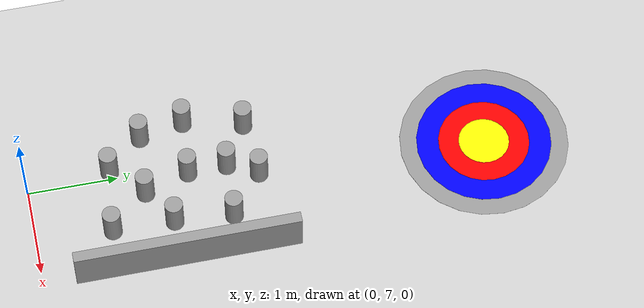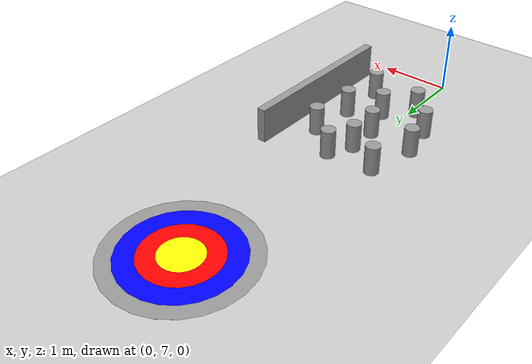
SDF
<sdf version="1.7">
 <world name="default">
  <model name="ground_plane">
   <static>1</static>
   <link name="link">
    <collision name="collision">
     <geometry><plane><normal>0 0 1</normal><size>100 100</size></plane></geometry>
     <surface><friction><ode><mu>100</mu><mu2>50</mu2></ode></friction></surface>
    </collision>
    <visual name="visual">
     <cast_shadows>0</cast_shadows>
     <geometry><plane><normal>0 0 1</normal><size>100 100</size></plane></geometry>
     <material>
      <script><uri>file://media/materials/scripts/gazebo.material</uri><name>Gazebo/Grey</name></script>
     </material>
    </visual>
   </link>
  </model>
  <model name="Target">
   <link name="link_4">
    <inertial>
     <mass>1</mass>
     <inertia><ixx>0.145833</ixx><ixy>0</ixy><ixz>0</ixz><iyy>0.145833</iyy><iyz>0</iyz><izz>0.125</izz></inertia>
    </inertial>
    <pose>0 0 -0.00075 0 -0 0</pose>
    <gravity>0</gravity>
    <kinematic>1</kinematic>
    <visual name="visual">
     <geometry><cylinder><radius>0.94158</radius><length>0.001</length></cylinder></geometry>
     <material>
      <lighting>1</lighting>
      <script><uri>file://media/materials/scripts/gazebo.material</uri><name>Gazebo/Grey</name></script>
      <shader type="pixel"><normal_map>__default__</normal_map></shader>
      <ambient>0 0 0 1</ambient>
      <diffuse>0 0 0 1</diffuse>
      <specular>0.01 0.01 0.01 1</specular>
      <emissive>0 0 0 1</emissive>
     </material>
    </visual>
   </link>
   <link name="link_4_clone">
    <inertial>
     <mass>1</mass>
     <inertia><ixx>0.145833</ixx><ixy>0</ixy><ixz>0</ixz><iyy>0.145833</iyy><iyz>0</iyz><izz>0.125</izz></inertia>
    </inertial>
    <pose>0 0 -0.00025 0 -0 0</pose>
    <gravity>0</gravity>
    <kinematic>1</kinematic>
    <visual name="visual">
     <geometry><cylinder><radius>0.753264</radius><length>0.001</length></cylinder></geometry>
     <material>
      <lighting>1</lighting>
      <script><uri>file://media/materials/scripts/gazebo.material</uri><name>Gazebo/Grey</name></script>
      <shader type="pixel"><normal_map>__default__</normal_map></shader>
      <ambient>0 0 1 1</ambient>
      <diffuse>0 0 1 1</diffuse>
      <specular>0.01 0.01 0.01 1</specular>
      <emissive>0 0 0 1</emissive>
     </material>
    </visual>
   </link>
   <link name="link_4_clone_clone">
    <inertial>
     <mass>1</mass>
     <inertia><ixx>0.145833</ixx><ixy>0</ixy><ixz>0</ixz><iyy>0.145833</iyy><iyz>0</iyz><izz>0.125</izz></inertia>
    </inertial>
    <pose>0 0 0.00025 0 -0 0</pose>
    <kinematic>1</kinematic>
    <visual name="visual">
     <geometry><cylinder><radius>0.508453</radius><length>0.001</length></cylinder></geometry>
     <material>
      <lighting>1</lighting>
      <script><uri>file://media/materials/scripts/gazebo.material</uri><name>Gazebo/Grey</name></script>
      <shader type="pixel"><normal_map>__default__</normal_map></shader>
      <ambient>1 0 0 1</ambient>
      <diffuse>1 0 0 1</diffuse>
      <specular>0.01 0.01 0.01 1</specular>
      <emissive>0 0 0 1</emissive>
     </material>
    </visual>
   </link>
   <link name="link_4_clone_clone_clone">
    <inertial>
     <mass>1</mass>
     <inertia><ixx>0.145833</ixx><ixy>0</ixy><ixz>0</ixz><iyy>0.145833</iyy><iyz>0</iyz><izz>0.125</izz></inertia>
    </inertial>
    <pose>0 0 0.00075 0 -0 0</pose>
    <gravity>0</gravity>
    <kinematic>1</kinematic>
    <visual name="visual">
     <geometry><cylinder><radius>0.282474</radius><length>0.001</length></cylinder></geometry>
     <material>
      <lighting>1</lighting>
      <script><uri>file://media/materials/scripts/gazebo.material</uri><name>Gazebo/Grey</name></script>
      <shader type="pixel"><normal_map>__default__</normal_map></shader>
      <ambient>1 1 0 1</ambient>
      <diffuse>1 1 0 1</diffuse>
      <specular>0.01 0.01 0.01 1</specular>
      <emissive>0 0 0 1</emissive>
     </material>
    </visual>
   </link>
   <static>0</static>
   <pose>0.34577 12.078 0.00125 0 -0 0</pose>
  </model>
  <model name="murs_clone">
   <link name="link">
    <inertial>
     <mass>0.146674</mass>
     <inertia>
      <ixx>0.0781773</ixx>
      <ixy>0</ixy>
      <ixz>0</ixz>
      <iyy>0.00309761</iyy>
      <iyz>0</iyz>
      <izz>0.0754374</izz>
     </inertia>
    </inertial>
    <kinematic>1</kinematic>
    <pose>-0.225456 0.79863 -0.251939 0 -0 0</pose>
    <gravity>0</gravity>
    <visual name="visual">
     <geometry><box><size>0.120964 2.48137 0.488666</size></box></geometry>
     <material>
      <script><name>Gazebo/Grey</name><uri>file://media/materials/scripts/gazebo.material</uri></script>
      <shader type="pixel"><normal_map>__default__</normal_map></shader>
      <ambient>0.5 0.5 0.5 0</ambient>
      <diffuse>0.5 0.5 0.5 1</diffuse>
      <specular>0.01 0.01 0.01 1</specular>
      <emissive>0 0 0 1</emissive>
     </material>
    </visual>
    <collision name="collision">
     <geometry><box><size>0.120964 2.48137 0.488666</size></box></geometry>
     <surface>
      <friction>
       <ode><mu>1</mu><mu2>1</mu2><fdir1>0 0 0</fdir1><slip1>0</slip1><slip2>0</slip2></ode>
       <torsional>
        <coefficient>1</coefficient>
        <patch_radius>0</patch_radius>
        <surface_radius>0</surface_radius>
        <use_patch_radius>1</use_patch_radius>
        <ode><slip>0</slip></ode>
       </torsional>
      </friction>
      <bounce><restitution_coefficient>0</restitution_coefficient><threshold>1e+06</threshold></bounce>
      <contact>
       <collide_without_contact>0</collide_without_contact>
       <collide_without_contact_bitmask>1</collide_without_contact_bitmask>
       <collide_bitmask>1</collide_bitmask>
       <ode>
        <soft_cfm>0</soft_cfm>
        <soft_erp>0.2</soft_erp>
        <kp>1e+13</kp>
        <kd>1</kd>
        <max_vel>0.01</max_vel>
        <min_depth>0</min_depth>
       </ode>
       <bullet>
        <split_impulse>1</split_impulse>
        <split_impulse_penetration_threshold>-0.01</split_impulse_penetration_threshold>
        <soft_cfm>0</soft_cfm>
        <soft_erp>0.2</soft_erp>
        <kp>1e+13</kp>
        <kd>1</kd>
       </bullet>
      </contact>
     </surface>
    </collision>
   </link>
   <static>0</static>
   <pose>1.3782 7.80287 0.499949 -1e-05 0 0</pose>
  </model>
  <model name="obstacle">
   <link name="link">
    <inertial>
     <mass>242.531</mass>
     <inertia><ixx>3.84007</ixx><ixy>0</ixy><ixz>0</ixz><iyy>3.84007</iyy><iyz>0</iyz><izz>1.21265</izz></inertia>
    </inertial>
    <kinematic>1</kinematic>
    <pose>0 0 -0.2 0 -0 0</pose>
    <gravity>0</gravity>
    <visual name="visual">
     <geometry><cylinder><radius>0.1</radius><length>0.4</length></cylinder></geometry>
     <material>
      <script><name>Gazebo/Grey</name><uri>file://media/materials/scripts/gazebo.material</uri></script>
      <shader type="pixel"><normal_map>__default__</normal_map></shader>
      <ambient>0.3 0.3 0.3 1</ambient>
      <diffuse>0.7 0.7 0.7 1</diffuse>
      <specular>0.01 0.01 0.01 1</specular>
      <emissive>0 0 0 1</emissive>
     </material>
    </visual>
    <collision name="collision">
     <geometry><cylinder><radius>0.1</radius><length>0.4</length></cylinder></geometry>
     <surface>
      <friction>
       <ode><mu>1</mu><mu2>1</mu2><fdir1>0 0 0</fdir1><slip1>0</slip1><slip2>0</slip2></ode>
       <torsional>
        <coefficient>1</coefficient>
        <patch_radius>0</patch_radius>
        <surface_radius>0</surface_radius>
        <use_patch_radius>1</use_patch_radius>
        <ode><slip>0</slip></ode>
       </torsional>
      </friction>
      <bounce><restitution_coefficient>0</restitution_coefficient><threshold>1e+06</threshold></bounce>
      <contact>
       <collide_without_contact>0</collide_without_contact>
       <collide_without_contact_bitmask>1</collide_without_contact_bitmask>
       <collide_bitmask>1</collide_bitmask>
       <ode>
        <soft_cfm>0</soft_cfm>
        <soft_erp>0.2</soft_erp>
        <kp>1e+13</kp>
        <kd>1</kd>
        <max_vel>0.01</max_vel>
        <min_depth>0</min_depth>
       </ode>
       <bullet>
        <split_impulse>1</split_impulse>
        <split_impulse_penetration_threshold>-0.01</split_impulse_penetration_threshold>
        <soft_cfm>0</soft_cfm>
        <soft_erp>0.2</soft_erp>
        <kp>1e+13</kp>
        <kd>1</kd>
       </bullet>
      </contact>
     </surface>
    </collision>
   </link>
   <static>0</static>
   <pose>0.662015 7.84654 0.401053 0 -0 0</pose>
  </model>
  <model name="obstacle_clone">
   <link name="link">
    <inertial>
     <mass>242.531</mass>
     <inertia><ixx>3.84007</ixx><ixy>0</ixy><ixz>0</ixz><iyy>3.84007</iyy><iyz>0</iyz><izz>1.21265</izz></inertia>
    </inertial>
    <kinematic>1</kinematic>
    <pose>0 0 -0.2 0 -0 0</pose>
    <gravity>0</gravity>
    <visual name="visual">
     <geometry><cylinder><radius>0.1</radius><length>0.4</length></cylinder></geometry>
     <material>
      <script><name>Gazebo/Grey</name><uri>file://media/materials/scripts/gazebo.material</uri></script>
      <shader type="pixel"><normal_map>__default__</normal_map></shader>
      <ambient>0.3 0.3 0.3 1</ambient>
      <diffuse>0.7 0.7 0.7 1</diffuse>
      <specular>0.01 0.01 0.01 1</specular>
      <emissive>0 0 0 1</emissive>
     </material>
    </visual>
    <collision name="collision">
     <geometry><cylinder><radius>0.1</radius><length>0.4</length></cylinder></geometry>
     <surface>
      <friction>
       <ode><mu>1</mu><mu2>1</mu2><fdir1>0 0 0</fdir1><slip1>0</slip1><slip2>0</slip2></ode>
       <torsional>
        <coefficient>1</coefficient>
        <patch_radius>0</patch_radius>
        <surface_radius>0</surface_radius>
        <use_patch_radius>1</use_patch_radius>
        <ode><slip>0</slip></ode>
       </torsional>
      </friction>
      <bounce><restitution_coefficient>0</restitution_coefficient><threshold>1e+06</threshold></bounce>
      <contact>
       <collide_without_contact>0</collide_without_contact>
       <collide_without_contact_bitmask>1</collide_without_contact_bitmask>
       <collide_bitmask>1</collide_bitmask>
       <ode>
        <soft_cfm>0</soft_cfm>
        <soft_erp>0.2</soft_erp>
        <kp>1e+13</kp>
        <kd>1</kd>
        <max_vel>0.01</max_vel>
        <min_depth>0</min_depth>
       </ode>
       <bullet>
        <split_impulse>1</split_impulse>
        <split_impulse_penetration_threshold>-0.01</split_impulse_penetration_threshold>
        <soft_cfm>0</soft_cfm>
        <soft_erp>0.2</soft_erp>
        <kp>1e+13</kp>
        <kd>1</kd>
       </bullet>
      </contact>
     </surface>
    </collision>
   </link>
   <static>0</static>
   <pose>0.10476 9.21027 0.401053 0 -0 0</pose>
  </model>
  <model name="obstacle_clone_0">
   <link name="link">
    <inertial>
     <mass>242.531</mass>
     <inertia><ixx>3.84007</ixx><ixy>0</ixy><ixz>0</ixz><iyy>3.84007</iyy><iyz>0</iyz><izz>1.21265</izz></inertia>
    </inertial>
    <kinematic>1</kinematic>
    <pose>0 0 -0.2 0 -0 0</pose>
    <gravity>0</gravity>
    <visual name="visual">
     <geometry><cylinder><radius>0.1</radius><length>0.4</length></cylinder></geometry>
     <material>
      <script><name>Gazebo/Grey</name><uri>file://media/materials/scripts/gazebo.material</uri></script>
      <shader type="pixel"><normal_map>__default__</normal_map></shader>
      <ambient>0.3 0.3 0.3 1</ambient>
      <diffuse>0.7 0.7 0.7 1</diffuse>
      <specular>0.01 0.01 0.01 1</specular>
      <emissive>0 0 0 1</emissive>
     </material>
    </visual>
    <collision name="collision">
     <geometry><cylinder><radius>0.1</radius><length>0.4</length></cylinder></geometry>
     <surface>
      <friction>
       <ode><mu>1</mu><mu2>1</mu2><fdir1>0 0 0</fdir1><slip1>0</slip1><slip2>0</slip2></ode>
       <torsional>
        <coefficient>1</coefficient>
        <patch_radius>0</patch_radius>
        <surface_radius>0</surface_radius>
        <use_patch_radius>1</use_patch_radius>
        <ode><slip>0</slip></ode>
       </torsional>
      </friction>
      <bounce><restitution_coefficient>0</restitution_coefficient><threshold>1e+06</threshold></bounce>
      <contact>
       <collide_without_contact>0</collide_without_contact>
       <collide_without_contact_bitmask>1</collide_without_contact_bitmask>
       <collide_bitmask>1</collide_bitmask>
       <ode>
        <soft_cfm>0</soft_cfm>
        <soft_erp>0.2</soft_erp>
        <kp>1e+13</kp>
        <kd>1</kd>
        <max_vel>0.01</max_vel>
        <min_depth>0</min_depth>
       </ode>
       <bullet>
        <split_impulse>1</split_impulse>
        <split_impulse_penetration_threshold>-0.01</split_impulse_penetration_threshold>
        <soft_cfm>0</soft_cfm>
        <soft_erp>0.2</soft_erp>
        <kp>1e+13</kp>
        <kd>1</kd>
       </bullet>
      </contact>
     </surface>
    </collision>
   </link>
   <static>0</static>
   <pose>0.731735 9.1769 0.401053 0 -0 0</pose>
  </model>
  <model name="obstacle_clone_1">
   <link name="link">
    <inertial>
     <mass>242.531</mass>
     <inertia><ixx>3.84007</ixx><ixy>0</ixy><ixz>0</ixz><iyy>3.84007</iyy><iyz>0</iyz><izz>1.21265</izz></inertia>
    </inertial>
    <kinematic>1</kinematic>
    <pose>0 0 -0.2 0 -0 0</pose>
    <gravity>0</gravity>
    <visual name="visual">
     <geometry><cylinder><radius>0.1</radius><length>0.4</length></cylinder></geometry>
     <material>
      <script><name>Gazebo/Grey</name><uri>file://media/materials/scripts/gazebo.material</uri></script>
      <shader type="pixel"><normal_map>__default__</normal_map></shader>
      <ambient>0.3 0.3 0.3 1</ambient>
      <diffuse>0.7 0.7 0.7 1</diffuse>
      <specular>0.01 0.01 0.01 1</specular>
      <emissive>0 0 0 1</emissive>
     </material>
    </visual>
    <collision name="collision">
     <geometry><cylinder><radius>0.1</radius><length>0.4</length></cylinder></geometry>
     <surface>
      <friction>
       <ode><mu>1</mu><mu2>1</mu2><fdir1>0 0 0</fdir1><slip1>0</slip1><slip2>0</slip2></ode>
       <torsional>
        <coefficient>1</coefficient>
        <patch_radius>0</patch_radius>
        <surface_radius>0</surface_radius>
        <use_patch_radius>1</use_patch_radius>
        <ode><slip>0</slip></ode>
       </torsional>
      </friction>
      <bounce><restitution_coefficient>0</restitution_coefficient><threshold>1e+06</threshold></bounce>
      <contact>
       <collide_without_contact>0</collide_without_contact>
       <collide_without_contact_bitmask>1</collide_without_contact_bitmask>
       <collide_bitmask>1</collide_bitmask>
       <ode>
        <soft_cfm>0</soft_cfm>
        <soft_erp>0.2</soft_erp>
        <kp>1e+13</kp>
        <kd>1</kd>
        <max_vel>0.01</max_vel>
        <min_depth>0</min_depth>
       </ode>
       <bullet>
        <split_impulse>1</split_impulse>
        <split_impulse_penetration_threshold>-0.01</split_impulse_penetration_threshold>
        <soft_cfm>0</soft_cfm>
        <soft_erp>0.2</soft_erp>
        <kp>1e+13</kp>
        <kd>1</kd>
       </bullet>
      </contact>
     </surface>
    </collision>
   </link>
   <static>0</static>
   <pose>-0.078918 7.92718 0.401053 0 -0 0</pose>
  </model>
  <model name="obstacle_clone_3">
   <link name="link">
    <inertial>
     <mass>242.531</mass>
     <inertia><ixx>3.84007</ixx><ixy>0</ixy><ixz>0</ixz><iyy>3.84007</iyy><iyz>0</iyz><izz>1.21265</izz></inertia>
    </inertial>
    <kinematic>1</kinematic>
    <pose>0 0 -0.2 0 -0 0</pose>
    <gravity>0</gravity>
    <visual name="visual">
     <geometry><cylinder><radius>0.1</radius><length>0.4</length></cylinder></geometry>
     <material>
      <script><name>Gazebo/Grey</name><uri>file://media/materials/scripts/gazebo.material</uri></script>
      <shader type="pixel"><normal_map>__default__</normal_map></shader>
      <ambient>0.3 0.3 0.3 1</ambient>
      <diffuse>0.7 0.7 0.7 1</diffuse>
      <specular>0.01 0.01 0.01 1</specular>
      <emissive>0 0 0 1</emissive>
     </material>
    </visual>
    <collision name="collision">
     <geometry><cylinder><radius>0.1</radius><length>0.4</length></cylinder></geometry>
     <surface>
      <friction>
       <ode><mu>1</mu><mu2>1</mu2><fdir1>0 0 0</fdir1><slip1>0</slip1><slip2>0</slip2></ode>
       <torsional>
        <coefficient>1</coefficient>
        <patch_radius>0</patch_radius>
        <surface_radius>0</surface_radius>
        <use_patch_radius>1</use_patch_radius>
        <ode><slip>0</slip></ode>
       </torsional>
      </friction>
      <bounce><restitution_coefficient>0</restitution_coefficient><threshold>1e+06</threshold></bounce>
      <contact>
       <collide_without_contact>0</collide_without_contact>
       <collide_without_contact_bitmask>1</collide_without_contact_bitmask>
       <collide_bitmask>1</collide_bitmask>
       <ode>
        <soft_cfm>0</soft_cfm>
        <soft_erp>0.2</soft_erp>
        <kp>1e+13</kp>
        <kd>1</kd>
        <max_vel>0.01</max_vel>
        <min_depth>0</min_depth>
       </ode>
       <bullet>
        <split_impulse>1</split_impulse>
        <split_impulse_penetration_threshold>-0.01</split_impulse_penetration_threshold>
        <soft_cfm>0</soft_cfm>
        <soft_erp>0.2</soft_erp>
        <kp>1e+13</kp>
        <kd>1</kd>
       </bullet>
      </contact>
     </surface>
    </collision>
   </link>
   <static>0</static>
   <pose>0.680278 8.5271 0.401053 0 -0 0</pose>
  </model>
  <model name="obstacle_clone_4">
   <link name="link">
    <inertial>
     <mass>242.531</mass>
     <inertia><ixx>3.84007</ixx><ixy>0</ixy><ixz>0</ixz><iyy>3.84007</iyy><iyz>0</iyz><izz>1.21265</izz></inertia>
    </inertial>
    <kinematic>1</kinematic>
    <pose>0 0 -0.2 0 -0 0</pose>
    <gravity>0</gravity>
    <visual name="visual">
     <geometry><cylinder><radius>0.1</radius><length>0.4</length></cylinder></geometry>
     <material>
      <script><name>Gazebo/Grey</name><uri>file://media/materials/scripts/gazebo.material</uri></script>
      <shader type="pixel"><normal_map>__default__</normal_map></shader>
      <ambient>0.3 0.3 0.3 1</ambient>
      <diffuse>0.7 0.7 0.7 1</diffuse>
      <specular>0.01 0.01 0.01 1</specular>
      <emissive>0 0 0 1</emissive>
     </material>
    </visual>
    <collision name="collision">
     <geometry><cylinder><radius>0.1</radius><length>0.4</length></cylinder></geometry>
     <surface>
      <friction>
       <ode><mu>1</mu><mu2>1</mu2><fdir1>0 0 0</fdir1><slip1>0</slip1><slip2>0</slip2></ode>
       <torsional>
        <coefficient>1</coefficient>
        <patch_radius>0</patch_radius>
        <surface_radius>0</surface_radius>
        <use_patch_radius>1</use_patch_radius>
        <ode><slip>0</slip></ode>
       </torsional>
      </friction>
      <bounce><restitution_coefficient>0</restitution_coefficient><threshold>1e+06</threshold></bounce>
      <contact>
       <collide_without_contact>0</collide_without_contact>
       <collide_without_contact_bitmask>1</collide_without_contact_bitmask>
       <collide_bitmask>1</collide_bitmask>
       <ode>
        <soft_cfm>0</soft_cfm>
        <soft_erp>0.2</soft_erp>
        <kp>1e+13</kp>
        <kd>1</kd>
        <max_vel>0.01</max_vel>
        <min_depth>0</min_depth>
       </ode>
       <bullet>
        <split_impulse>1</split_impulse>
        <split_impulse_penetration_threshold>-0.01</split_impulse_penetration_threshold>
        <soft_cfm>0</soft_cfm>
        <soft_erp>0.2</soft_erp>
        <kp>1e+13</kp>
        <kd>1</kd>
       </bullet>
      </contact>
     </surface>
    </collision>
   </link>
   <static>0</static>
   <pose>-0.431692 8.32583 0.401053 0 -0 0</pose>
  </model>
  <model name="obstacle_clone_5">
   <link name="link">
    <inertial>
     <mass>242.531</mass>
     <inertia><ixx>3.84007</ixx><ixy>0</ixy><ixz>0</ixz><iyy>3.84007</iyy><iyz>0</iyz><izz>1.21265</izz></inertia>
    </inertial>
    <kinematic>1</kinematic>
    <pose>0 0 -0.2 0 -0 0</pose>
    <gravity>0</gravity>
    <visual name="visual">
     <geometry><cylinder><radius>0.1</radius><length>0.4</length></cylinder></geometry>
     <material>
      <script><name>Gazebo/Grey</name><uri>file://media/materials/scripts/gazebo.material</uri></script>
      <shader type="pixel"><normal_map>__default__</normal_map></shader>
      <ambient>0.3 0.3 0.3 1</ambient>
      <diffuse>0.7 0.7 0.7 1</diffuse>
      <specular>0.01 0.01 0.01 1</specular>
      <emissive>0 0 0 1</emissive>
     </material>
    </visual>
    <collision name="collision">
     <geometry><cylinder><radius>0.1</radius><length>0.4</length></cylinder></geometry>
     <surface>
      <friction>
       <ode><mu>1</mu><mu2>1</mu2><fdir1>0 0 0</fdir1><slip1>0</slip1><slip2>0</slip2></ode>
       <torsional>
        <coefficient>1</coefficient>
        <patch_radius>0</patch_radius>
        <surface_radius>0</surface_radius>
        <use_patch_radius>1</use_patch_radius>
        <ode><slip>0</slip></ode>
       </torsional>
      </friction>
      <bounce><restitution_coefficient>0</restitution_coefficient><threshold>1e+06</threshold></bounce>
      <contact>
       <collide_without_contact>0</collide_without_contact>
       <collide_without_contact_bitmask>1</collide_without_contact_bitmask>
       <collide_bitmask>1</collide_bitmask>
       <ode>
        <soft_cfm>0</soft_cfm>
        <soft_erp>0.2</soft_erp>
        <kp>1e+13</kp>
        <kd>1</kd>
        <max_vel>0.01</max_vel>
        <min_depth>0</min_depth>
       </ode>
       <bullet>
        <split_impulse>1</split_impulse>
        <split_impulse_penetration_threshold>-0.01</split_impulse_penetration_threshold>
        <soft_cfm>0</soft_cfm>
        <soft_erp>0.2</soft_erp>
        <kp>1e+13</kp>
        <kd>1</kd>
       </bullet>
      </contact>
     </surface>
    </collision>
   </link>
   <static>0</static>
   <pose>0.269323 8.27294 0.401053 0 -0 0</pose>
  </model>
  <model name="obstacle_clone_6">
   <link name="link">
    <inertial>
     <mass>242.531</mass>
     <inertia><ixx>3.84007</ixx><ixy>0</ixy><ixz>0</ixz><iyy>3.84007</iyy><iyz>0</iyz><izz>1.21265</izz></inertia>
    </inertial>
    <kinematic>1</kinematic>
    <pose>0 0 -0.2 0 -0 0</pose>
    <gravity>0</gravity>
    <visual name="visual">
     <geometry><cylinder><radius>0.1</radius><length>0.4</length></cylinder></geometry>
     <material>
      <script><name>Gazebo/Grey</name><uri>file://media/materials/scripts/gazebo.material</uri></script>
      <shader type="pixel"><normal_map>__default__</normal_map></shader>
      <ambient>0.3 0.3 0.3 1</ambient>
      <diffuse>0.7 0.7 0.7 1</diffuse>
      <specular>0.01 0.01 0.01 1</specular>
      <emissive>0 0 0 1</emissive>
     </material>
    </visual>
    <collision name="collision">
     <geometry><cylinder><radius>0.1</radius><length>0.4</length></cylinder></geometry>
     <surface>
      <friction>
       <ode><mu>1</mu><mu2>1</mu2><fdir1>0 0 0</fdir1><slip1>0</slip1><slip2>0</slip2></ode>
       <torsional>
        <coefficient>1</coefficient>
        <patch_radius>0</patch_radius>
        <surface_radius>0</surface_radius>
        <use_patch_radius>1</use_patch_radius>
        <ode><slip>0</slip></ode>
       </torsional>
      </friction>
      <bounce><restitution_coefficient>0</restitution_coefficient><threshold>1e+06</threshold></bounce>
      <contact>
       <collide_without_contact>0</collide_without_contact>
       <collide_without_contact_bitmask>1</collide_without_contact_bitmask>
       <collide_bitmask>1</collide_bitmask>
       <ode>
        <soft_cfm>0</soft_cfm>
        <soft_erp>0.2</soft_erp>
        <kp>1e+13</kp>
        <kd>1</kd>
        <max_vel>0.01</max_vel>
        <min_depth>0</min_depth>
       </ode>
       <bullet>
        <split_impulse>1</split_impulse>
        <split_impulse_penetration_threshold>-0.01</split_impulse_penetration_threshold>
        <soft_cfm>0</soft_cfm>
        <soft_erp>0.2</soft_erp>
        <kp>1e+13</kp>
        <kd>1</kd>
       </bullet>
      </contact>
     </surface>
    </collision>
   </link>
   <static>0</static>
   <pose>-0.370775 9.48381 0.401053 0 -0 0</pose>
  </model>
  <model name="obstacle_clone_7">
   <link name="link">
    <inertial>
     <mass>242.531</mass>
     <inertia><ixx>3.84007</ixx><ixy>0</ixy><ixz>0</ixz><iyy>3.84007</iyy><iyz>0</iyz><izz>1.21265</izz></inertia>
    </inertial>
    <kinematic>1</kinematic>
    <pose>0 0 -0.2 0 -0 0</pose>
    <gravity>0</gravity>
    <visual name="visual">
     <geometry><cylinder><radius>0.1</radius><length>0.4</length></cylinder></geometry>
     <material>
      <script><name>Gazebo/Grey</name><uri>file://media/materials/scripts/gazebo.material</uri></script>
      <shader type="pixel"><normal_map>__default__</normal_map></shader>
      <ambient>0.3 0.3 0.3 1</ambient>
      <diffuse>0.7 0.7 0.7 1</diffuse>
      <specular>0.01 0.01 0.01 1</specular>
      <emissive>0 0 0 1</emissive>
     </material>
    </visual>
    <collision name="collision">
     <geometry><cylinder><radius>0.1</radius><length>0.4</length></cylinder></geometry>
     <surface>
      <friction>
       <ode><mu>1</mu><mu2>1</mu2><fdir1>0 0 0</fdir1><slip1>0</slip1><slip2>0</slip2></ode>
       <torsional>
        <coefficient>1</coefficient>
        <patch_radius>0</patch_radius>
        <surface_radius>0</surface_radius>
        <use_patch_radius>1</use_patch_radius>
        <ode><slip>0</slip></ode>
       </torsional>
      </friction>
      <bounce><restitution_coefficient>0</restitution_coefficient><threshold>1e+06</threshold></bounce>
      <contact>
       <collide_without_contact>0</collide_without_contact>
       <collide_without_contact_bitmask>1</collide_without_contact_bitmask>
       <collide_bitmask>1</collide_bitmask>
       <ode>
        <soft_cfm>0</soft_cfm>
        <soft_erp>0.2</soft_erp>
        <kp>1e+13</kp>
        <kd>1</kd>
        <max_vel>0.01</max_vel>
        <min_depth>0</min_depth>
       </ode>
       <bullet>
        <split_impulse>1</split_impulse>
        <split_impulse_penetration_threshold>-0.01</split_impulse_penetration_threshold>
        <soft_cfm>0</soft_cfm>
        <soft_erp>0.2</soft_erp>
        <kp>1e+13</kp>
        <kd>1</kd>
       </bullet>
      </contact>
     </surface>
    </collision>
   </link>
   <static>0</static>
   <pose>-0.529735 8.82427 0.401053 0 -0 0</pose>
  </model>
  <model name="obstacle_clone_8">
   <link name="link">
    <inertial>
     <mass>242.531</mass>
     <inertia><ixx>3.84007</ixx><ixy>0</ixy><ixz>0</ixz><iyy>3.84007</iyy><iyz>0</iyz><izz>1.21265</izz></inertia>
    </inertial>
    <kinematic>1</kinematic>
    <pose>0 0 -0.2 0 -0 0</pose>
    <gravity>0</gravity>
    <visual name="visual">
     <geometry><cylinder><radius>0.1</radius><length>0.4</length></cylinder></geometry>
     <material>
      <script><name>Gazebo/Grey</name><uri>file://media/materials/scripts/gazebo.material</uri></script>
      <shader type="pixel"><normal_map>__default__</normal_map></shader>
      <ambient>0.3 0.3 0.3 1</ambient>
      <diffuse>0.7 0.7 0.7 1</diffuse>
      <specular>0.01 0.01 0.01 1</specular>
      <emissive>0 0 0 1</emissive>
     </material>
    </visual>
    <collision name="collision">
     <geometry><cylinder><radius>0.1</radius><length>0.4</length></cylinder></geometry>
     <surface>
      <friction>
       <ode><mu>1</mu><mu2>1</mu2><fdir1>0 0 0</fdir1><slip1>0</slip1><slip2>0</slip2></ode>
       <torsional>
        <coefficient>1</coefficient>
        <patch_radius>0</patch_radius>
        <surface_radius>0</surface_radius>
        <use_patch_radius>1</use_patch_radius>
        <ode><slip>0</slip></ode>
       </torsional>
      </friction>
      <bounce><restitution_coefficient>0</restitution_coefficient><threshold>1e+06</threshold></bounce>
      <contact>
       <collide_without_contact>0</collide_without_contact>
       <collide_without_contact_bitmask>1</collide_without_contact_bitmask>
       <collide_bitmask>1</collide_bitmask>
       <ode>
        <soft_cfm>0</soft_cfm>
        <soft_erp>0.2</soft_erp>
        <kp>1e+13</kp>
        <kd>1</kd>
        <max_vel>0.01</max_vel>
        <min_depth>0</min_depth>
       </ode>
       <bullet>
        <split_impulse>1</split_impulse>
        <split_impulse_penetration_threshold>-0.01</split_impulse_penetration_threshold>
        <soft_cfm>0</soft_cfm>
        <soft_erp>0.2</soft_erp>
        <kp>1e+13</kp>
        <kd>1</kd>
       </bullet>
      </contact>
     </surface>
    </collision>
   </link>
   <static>0</static>
   <pose>0.270789 9.54208 0.401053 0 -0 0</pose>
  </model>
  <model name="obstacle_clone_9">
   <link name="link">
    <inertial>
     <mass>242.531</mass>
     <inertia><ixx>3.84007</ixx><ixy>0</ixy><ixz>0</ixz><iyy>3.84007</iyy><iyz>0</iyz><izz>1.21265</izz></inertia>
    </inertial>
    <kinematic>1</kinematic>
    <pose>0 0 -0.2 0 -0 0</pose>
    <gravity>0</gravity>
    <visual name="visual">
     <geometry><cylinder><radius>0.1</radius><length>0.4</length></cylinder></geometry>
     <material>
      <script><name>Gazebo/Grey</name><uri>file://media/materials/scripts/gazebo.material</uri></script>
      <shader type="pixel"><normal_map>__default__</normal_map></shader>
      <ambient>0.3 0.3 0.3 1</ambient>
      <diffuse>0.7 0.7 0.7 1</diffuse>
      <specular>0.01 0.01 0.01 1</specular>
      <emissive>0 0 0 1</emissive>
     </material>
    </visual>
    <collision name="collision">
     <geometry><cylinder><radius>0.1</radius><length>0.4</length></cylinder></geometry>
     <surface>
      <friction>
       <ode><mu>1</mu><mu2>1</mu2><fdir1>0 0 0</fdir1><slip1>0</slip1><slip2>0</slip2></ode>
       <torsional>
        <coefficient>1</coefficient>
        <patch_radius>0</patch_radius>
        <surface_radius>0</surface_radius>
        <use_patch_radius>1</use_patch_radius>
        <ode><slip>0</slip></ode>
       </torsional>
      </friction>
      <bounce><restitution_coefficient>0</restitution_coefficient><threshold>1e+06</threshold></bounce>
      <contact>
       <collide_without_contact>0</collide_without_contact>
       <collide_without_contact_bitmask>1</collide_without_contact_bitmask>
       <collide_bitmask>1</collide_bitmask>
       <ode>
        <soft_cfm>0</soft_cfm>
        <soft_erp>0.2</soft_erp>
        <kp>1e+13</kp>
        <kd>1</kd>
        <max_vel>0.01</max_vel>
        <min_depth>0</min_depth>
       </ode>
       <bullet>
        <split_impulse>1</split_impulse>
        <split_impulse_penetration_threshold>-0.01</split_impulse_penetration_threshold>
        <soft_cfm>0</soft_cfm>
        <soft_erp>0.2</soft_erp>
        <kp>1e+13</kp>
        <kd>1</kd>
       </bullet>
      </contact>
     </surface>
    </collision>
   </link>
   <static>0</static>
   <pose>0.110856 8.77373 0.401053 0 -0 0</pose>
  </model>
 </world>
</sdf>
